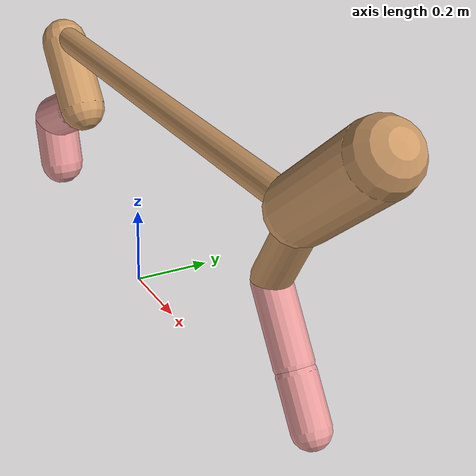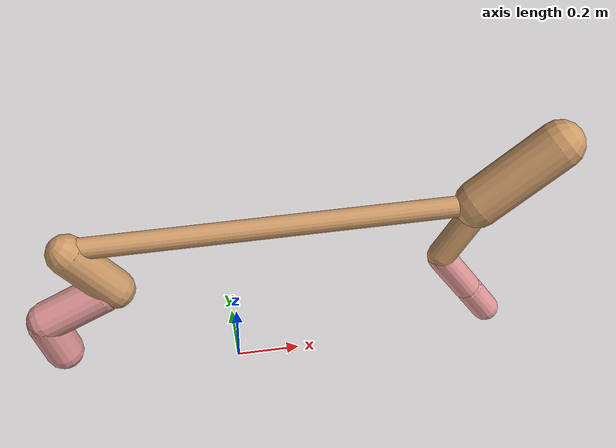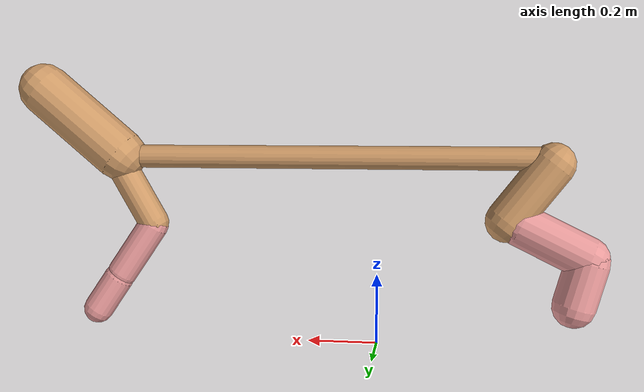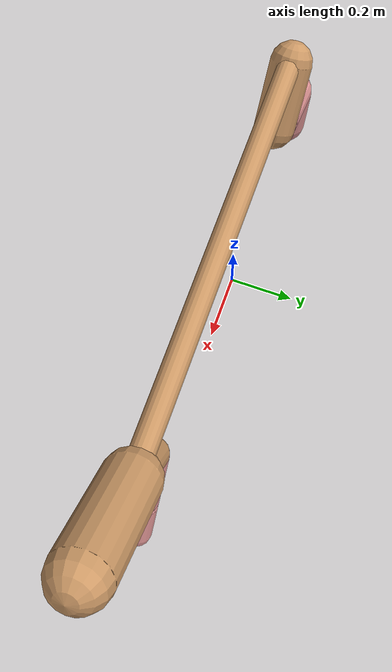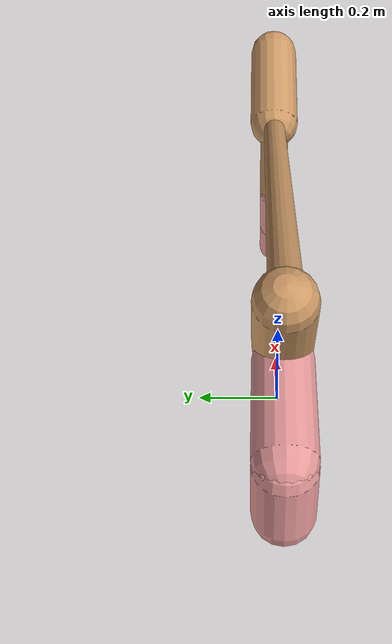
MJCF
<mujoco model="cheetah">
  <compiler angle="radian" coordinate="local" inertiafromgeom="true" settotalmass="14" />
  <default>
    <joint armature=".1" damping=".01" limited="true" solimplimit="0 .8 .03" solreflimit=".02 1" stiffness="8" />
    <geom conaffinity="0" condim="3" contype="1" friction="0.8 .1 .1" rgba="0.8 0.6 .4 1" solimp="0.0 0.8 0.01" solref="0.02 1" />
    <motor ctrllimited="true" ctrlrange="-1 1" />
  </default>
  <size nstack="300000" nuser_geom="1" />
  <option gravity="0 0 -9.81" timestep="0.01" />
  <worldbody>
    <body name="torso" pos="0.0 0.0 0.5382206908738408">
      <joint armature="0" axis="1 0 0" damping="0" limited="false" name="ignorex" pos="0 0 0" stiffness="0" type="slide" />
      <joint armature="0" axis="0 0 1" damping="0" limited="false" name="ignorez" pos="0 0 0" stiffness="0" type="slide" />
      <joint armature="0" axis="0 1 0" damping="0" limited="false" name="ignorey" pos="0 0 0" stiffness="0" type="hinge" />
      <geom fromto="-0.5 0.0 0.0 0.77563936089423 0.0 0.0" name="torso" size="0.03344213494136776" type="capsule" />
      <geom axisangle="0 1 0 .87" name="head" pos="0.87563936089423 0.0 0.1" size="0.07635704652333841 0.15" type="capsule" />

      <body name="bthigh" pos="-.5 0 0">
        <joint axis="0 1 0" damping="6" name="bthigh" pos="0 0 0" range="-.52 1.05" stiffness="240" type="hinge" />
        <geom axisangle="0 1 0 -3.8" name="bthigh" pos="0.0734775819030384 0.0 -0.0955208564739499" size="0.06187085947421225 0.10149999999999999" type="capsule" />
        <body name="bshin" pos="0.10695516380607678 0.0 -0.18104171294789978">
          <joint axis="0 1 0" damping="4.5" name="bshin" pos="0 0 0" range="-.785 .785" stiffness="180" type="hinge" />
          <geom axisangle="0 1 0 -2.03" name="bshin" pos="-0.0997507764050038 0.0 -0.0498753882025019" rgba="0.9 0.6 0.6 1" size="0.06187085947421225 0.105" type="capsule" />
          <body name="bfoot" pos="-0.1995015528100076 0.0 -0.0997507764050038">
            <joint axis="0 1 0" damping="3" name="bfoot" pos="0 0 0" range="-.4 .785" stiffness="120" type="hinge" />
            <geom axisangle="0 1 0 -.27" name="bfoot" pos="0.021667753813597694 0.0 -0.07005907066396588" rgba="0.9 0.6 0.6 1" size="0.06187085947421225 0.0658" type="capsule" />
            <inertial mass="10" />
          </body>
        </body>
      </body>
      <body name="fthigh" pos="0.77563936089423 0.0 0.0">
        <joint axis="0 1 0" damping="4.5" name="fthigh" pos="0 0 0" range="-1.5 0.8" stiffness="180" type="hinge" />
        <geom axisangle="0 1 0 .52" name="fthigh" pos="-0.05865939795927741 0.0 -0.10055896793018984" size="0.044356798489027016 0.11049304590608876" type="capsule" />
        <body name="fshin" pos="-0.11731879591855482 0.0 -0.20111793586037968">
          <joint axis="0 1 0" damping="3" name="fshin" pos="0 0 0" range="-1.2 1.1" stiffness="120" type="hinge" />
          <geom axisangle="0 1 0 -.6" name="fshin" pos="0.05449754469258551 0.0 -0.0754581388051184" rgba="0.9 0.6 0.6 1" size="0.044356798489027016 0.08806212681237148" type="capsule" />
          <body name="ffoot" pos="0.10899508938517102 0.0 -0.1509162776102368">
            <joint axis="0 1 0" damping="1.5" name="ffoot" pos="0 0 0" range="-3.1 -0.3" stiffness="60" type="hinge" />
            <geom axisangle="0 1 0 -.6" name="ffoot" pos="0.03859431248230161 0.0 -0.0600355971946914" rgba="0.9 0.6 0.6 1" size="0.044356798489027016 0.05815423468741514" type="capsule" />
            <inertial mass="10" />
          </body>
        </body>
      </body>
    </body>
  </worldbody>
  <actuator>
    <motor gear="120" joint="bthigh" name="bthigh" />
    <motor gear="90" joint="bshin" name="bshin" />
    <motor gear="60" joint="bfoot" name="bfoot" />
    <motor gear="120" joint="fthigh" name="fthigh" />
    <motor gear="60" joint="fshin" name="fshin" />
    <motor gear="30" joint="ffoot" name="ffoot" />
  </actuator>
</mujoco>
